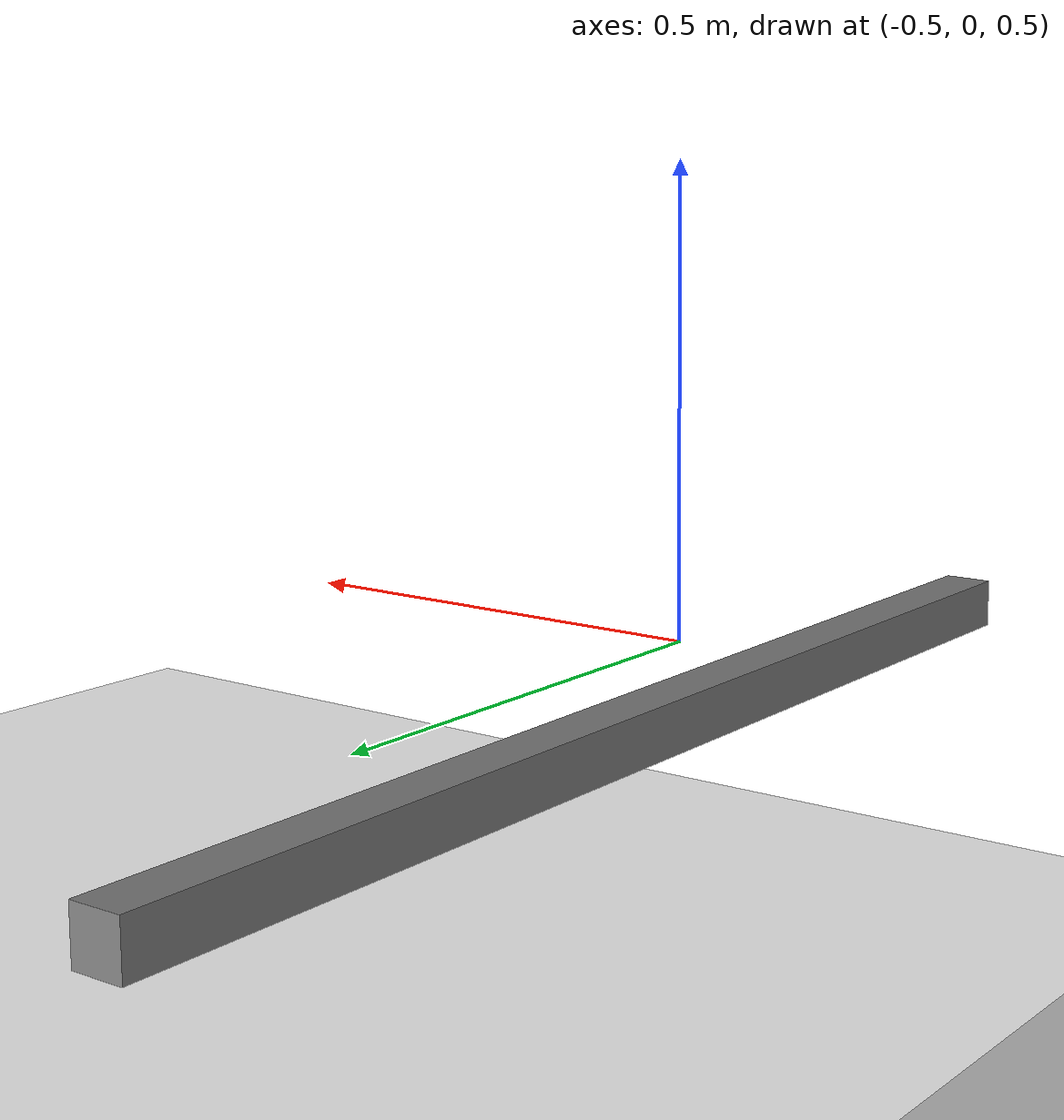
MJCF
<mujoco>
    <option gravity="0 0 9.81" />
    <option integrator="RK4" />

    <worldbody>

        <body name="base">
            <geom name="table" type="box" size="1.85 0.82 0.10" pos="0.925 0.41 0.1" rgba="1 1 1 1" />
            <geom name="left_sigma" type="box" size="0.03 0.75 0.03" pos="-0.455 0 0.40" />
        </body>
    </worldbody>
</mujoco>
